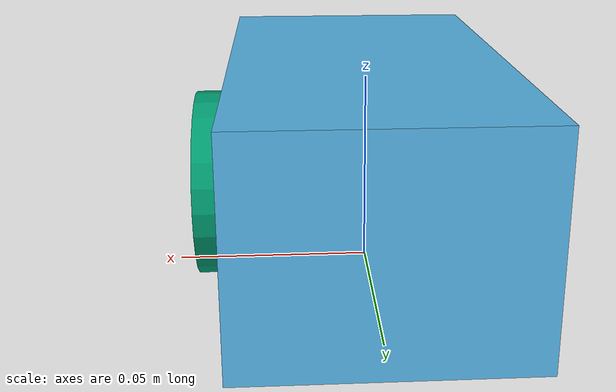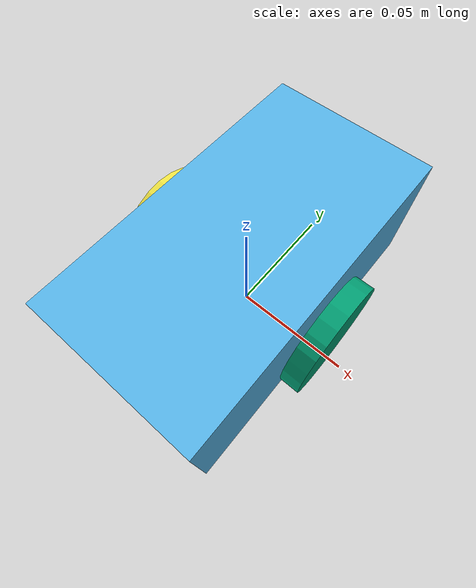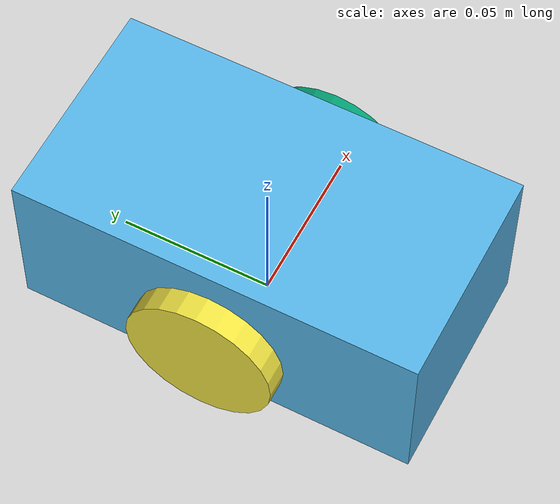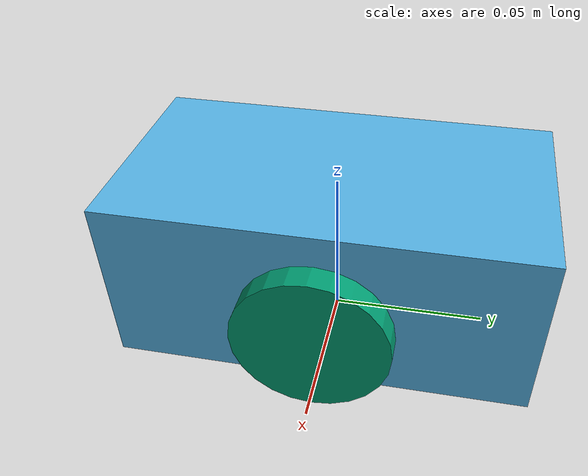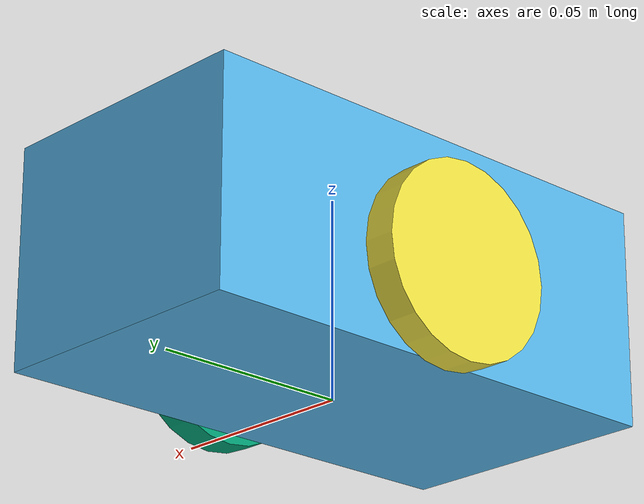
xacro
<robot name="SimpleMouse" xmlns:xacro="http://ros.org/wiki/xacro">
    <xacro:include filename="$(find robot_description)/urdf/body.urdf.xacro" />
    <xacro:include filename="$(find robot_description)/urdf/wheel.urdf.xacro" />
    <xacro:wheel rl="r" parent="body" />
    <xacro:wheel rl="l" parent="body" />

    <gazebo>
        <plugin name="differential_drive_controller" filename="libgazebo_ros_diff_drive.so">
            <leftJoint>wheel_l_joint</leftJoint>
            <rightJoint>wheel_r_joint</rightJoint>
            <robotBaseFrame>base_link</robotBaseFrame>
            <wheelSeparation>0.08</wheelSeparation>
            <wheelDiameter>0.048</wheelDiameter>
            <publishWheelJointState>true</publishWheelJointState>
            <odometryTopic>odometry</odometryTopic>
            <odometryFrame>odometry</odometryFrame>
        </plugin>
    </gazebo>

</robot>

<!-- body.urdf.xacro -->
<robot name="body" xmlns:xacro="http://ros.org/wiki/xacro">
<link name="base_link" />

<!-- 質量、幅、高さ、奥行きを定義 -->
<xacro:property name="b_m" value="1.68"/>
<xacro:property name="b_w" value="0.07"/>
<xacro:property name="b_h" value="0.13"/>
<xacro:property name="b_d" value="0.055"/>

<link name="body">
    <visual>
        <geometry>
            <box size="${b_w} ${b_h} ${b_d}"/>
        </geometry>
    </visual>
    <collision>
        <geometry>
            <box size="${b_w} ${b_h} ${b_d}"/>
        </geometry>
    </collision>
    <inertial>
        <origin xyz="0.0 0.0 0.0" rpy="0.0 0.0 0.0"/>
        <mass value="${b_m}"/>
        <inertia ixx="${b_m*(b_h*b_h+b_d*b_d)/12}" ixy="0.0" ixz="0.0"
                iyx="0.0" iyy="${b_m*(b_w*b_w+b_d*b_d)/12}" iyz="0.0"
                izx="0.0" izy="0.0" izz="${b_m*(b_w*b_w+b_h*b_h)/12}"/>
    </inertial>
</link>
<joint name="body_joint" type="fixed">
    <parent link="base_link"/>
    <child link="body"/>
    <origin xyz="0 0 0.0275" rpy="0 0 0"/>
</joint>
</robot>

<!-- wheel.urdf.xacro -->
<robot name="wheel"
    xmlns:xacro = "http://ros.org/wiki/xacro">
    <xacro:property name = "PI" value = "3.141592653897931" />
    <xacro:property name = "wheel_radius" value = "0.024" />
    <xacro:property name = "wheel_height" value = "0.008" />
    <xacro:property name = "wheel_mass" value = "0.112" />
    <xacro:macro name = "wheel" params = "rl parent">
    <link name = "wheel_${rl}">
        <visual>
            <geometry>
                <cylinder
                length = "${wheel_height}"
                radius = "${wheel_radius}" />
            </geometry>
        </visual>
        <collision>
            <geometry>
                <cylinder
                length = "${wheel_height}"
                radius = "${wheel_radius}" />
            </geometry>
        </collision>
        <inertial>
            <origin xyz="0.0 0.0 0.0" rpy="0.0 0.0 0.0"/>
            <mass value="${wheel_mass}"/>
            <inertia ixx="${wheel_mass * (3 * wheel_radius * wheel_radius + wheel_height * wheel_height)/12}" ixy="0.0" ixz="0.0"
                    iyx="0.0" iyy="${wheel_mass * (3 * wheel_radius * wheel_radius + wheel_height * wheel_height)/12}" iyz="0.0"
                    izx="0.0" izy="0.0" izz="${wheel_mass * (wheel_radius * wheel_radius)/2}"/>
        </inertial>
    </link>
    <joint name = "wheel_${rl}_joint" type = "continuous">
        <parent link = "${parent}"/>
        <child link = "wheel_${rl}"/>
        <xacro:if value = "${rl == 'r'}">
            <origin xyz = "0.04 0 ${0.022 - 0.0275}" rpy = "0 ${PI/2} 0" />
        </xacro:if>
        <xacro:if value = "${rl == 'l'}">
            <origin xyz = "-0.04 0 ${0.022 - 0.0275}" rpy = "0 ${PI/2} 0" />
        </xacro:if>
        <axis xyz = "0 0 1"/>
        <limit effort = "10" velocity = "10" />
        <joint_properties damping="0.0" friction="0.0"/>
    </joint>
    </xacro:macro>
</robot>
